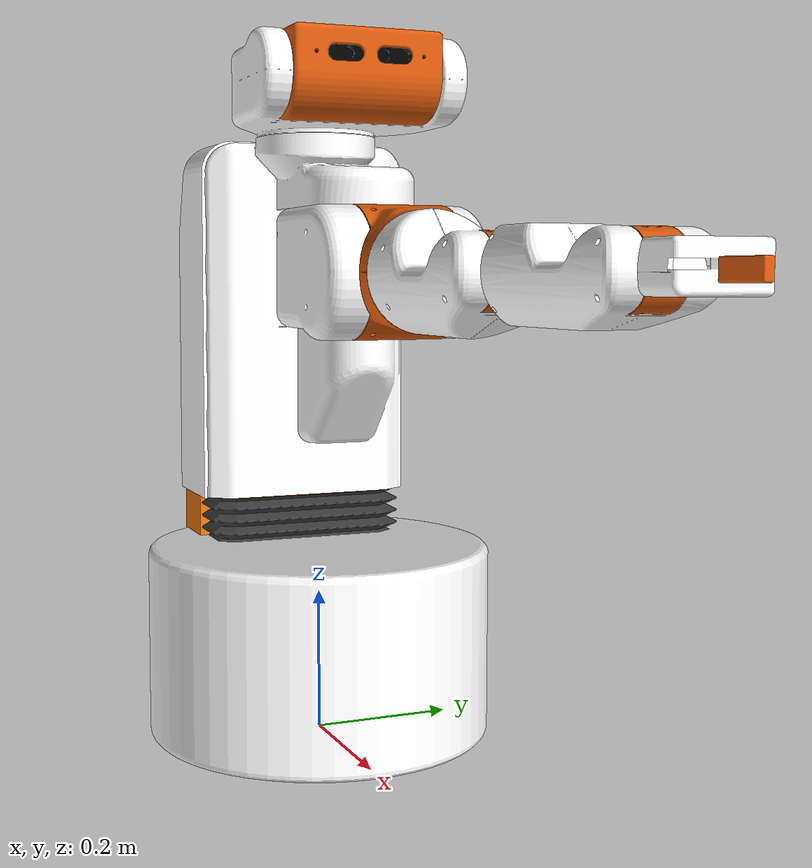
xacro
<?xml version="1.0"?>
<robot xmlns:xacro="http://www.ros.org/wiki/xacro" name="ubr1">
    <xacro:arg name="initial_positions_file" default="initial_positions.yaml" />

    <!-- Import ubr1 urdf file -->
    <xacro:include filename="$(find ubr1_description)/robots/ubr1_robot.urdf" />

    <!-- Import control_xacro -->
    <xacro:include filename="ubr1.ros2_control.xacro" />

    <xacro:ubr1_ros2_control name="FakeSystem" initial_positions_file="$(arg initial_positions_file)"/>

</robot>

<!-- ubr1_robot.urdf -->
<robot name="ubr1">
  <link name="base_link">
    <visual>
      <origin rpy="0 0 0" xyz="0 0 0" />
      <geometry>
        <mesh filename="package://ubr1_description/meshes/base_link.STL" />
      </geometry>
      <material name="">
        <color rgba="1 1 1 1" />
      </material>
    </visual>
    <collision>
      <origin rpy="0 0 0" xyz="-0.2475 -0.2475 0" />
      <geometry>
        <mesh filename="package://ubr1_description/meshes/base_link_col.STL" />
      </geometry>
    </collision>
  </link>
  <link name="base_inertia">
    <!-- Hack around KDL issues -->
    <inertial>
      <origin rpy="0 0 0" xyz="0.0043027 -0.0000947 0.1492788" />
      <mass value="35.0237183" />
      <inertia ixx="0.2749377" ixy="-0.0002025" ixz="-0.0013661"
               iyy="0.2398372" iyz="-0.0004900"
               izz="5.3671008"/>
    </inertial>
  </link>
  <joint name="base_inertia_joint" type="fixed">
    <origin rpy="0 0 0" xyz="0 0 0" />
    <parent link="base_link" />
    <child link="base_inertia" />
  </joint>
  <link name="torso_lift_link">
    <inertial>
      <origin rpy="0 0 0" xyz="-0.060142360276412 0.00304133533168627 0.343272867034157" />
      <mass value="10.81628746254819" />
      <inertia ixx="0.0641960264706125" ixy="0.001128617953499" ixz="0.00203364821006436" iyy="0.061658561971383" iyz="-3.14401755382909E-05" izz="0.0376084656328484" />
    </inertial>
    <visual>
      <origin rpy="0 0 0" xyz="0 0 0" />
      <geometry>
        <mesh filename="package://ubr1_description/meshes/torso_lift_link.STL" />
      </geometry>
      <material name="">
        <color rgba="1 1 1 1" />
      </material>
    </visual>
    <collision>
      <origin rpy="0 0 0" xyz="0 -.02 0" />
      <geometry>
        <mesh filename="package://ubr1_description/meshes/torso_lift_link_col.STL" />
      </geometry>
    </collision>
  </link>
  <joint name="torso_lift_joint" type="prismatic">
    <origin rpy="2.4652E-32 0 0" xyz="-0.051533 0 0.26428" />
    <parent link="base_link" />
    <child link="torso_lift_link" />
    <axis xyz="0 0 1" />
    <limit effort="450" lower="0.0" upper="0.3556" velocity="0.1" />
    <calibration rising="0.0" />
    <dynamics damping="1000" />
  </joint>
  <link name="shoulder_pan_link">
    <inertial>
      <inertia ixx="0.04593" ixy="-0.00259" ixz="-3e-05" iyy="0.03667" iyz="-0.00031" izz="0.04858" />
      <mass value="6.39321" />
      <origin rpy="0.0 0.0 0.0" xyz="0.01775 -0.00868 -0.00471" />
    </inertial>
    <visual>
      <origin rpy="0 0 0" xyz="0 0 0" />
      <geometry>
        <mesh filename="package://ubr1_description/meshes/shoulder_pan_link.STL" />
      </geometry>
      <material name="">
        <color rgba="1 1 1 1" />
      </material>
    </visual>
    <collision>
      <origin rpy="0 0 0" xyz="0.0 0 0" />
      <geometry>
        <mesh filename="package://ubr1_description/meshes/shoulder_pan_link_col.STL" />
      </geometry>
    </collision>
  </link>
  <joint name="shoulder_pan_joint" type="revolute">
    <origin rpy="-2.4652E-32 0 0" xyz="0.11446 0.035 0.39613" />
    <parent link="torso_lift_link" />
    <child link="shoulder_pan_link" />
    <axis xyz="0 0 1" />
    <limit effort="6.712" lower="-1.3962634" upper="1.3962634" velocity="1.30899694" />
    <calibration rising="0.0" />
    <dynamics damping="0.7" />
  </joint>
  <link name="shoulder_lift_link">
    <inertial>
      <inertia ixx="0.01193" ixy="0.00013" ixz="-0.00026" iyy="0.00932" iyz="4e-05" izz="0.01415" /><mass value="3.57781" /><origin rpy="0.0 0.0 0.0" xyz="0.01595 0.01107 -0.01047" /></inertial>
    <visual>
      <origin rpy="0 0 0" xyz="0 0 0" />
      <geometry>
        <mesh filename="package://ubr1_description/meshes/shoulder_lift_link.STL" />
      </geometry>
      <material name="">
        <color rgba="0.874509803921569 0.352941176470588 0.0470588235294118 1" />
      </material>
    </visual>
    <collision>
      <origin rpy="0 0 0" xyz="0.0 0 0" />
      <geometry>
        <mesh filename="package://ubr1_description/meshes/shoulder_lift_link_col.STL" />
      </geometry>
    </collision>
  </link>
  <joint name="shoulder_lift_joint" type="revolute">
    <origin rpy="0 0 0" xyz="0.11 0 0" />
    <parent link="shoulder_pan_link" />
    <child link="shoulder_lift_link" />
    <axis xyz="0 1 0" />
    <limit effort="37.802" lower="-0.785398163" upper="1.34390352" velocity="1.30899694" />
    <calibration rising="0.0" />
    <dynamics damping="0.7" />
  </joint>
  <link name="upperarm_roll_link">
    <inertial>
      <origin rpy="0.0 0.0 0.0" xyz="0.08552 -0.00001 -0.00997" />
      <inertia ixx="0.00618" ixy="-0.00015" ixz="0.00105" iyy="0.01931" iyz="0.0" izz="0.02107" />
      <mass value="2.59549" />
    </inertial>
    <visual>
      <origin rpy="0 0 0" xyz="0 0 0" />
      <geometry>
        <mesh filename="package://ubr1_description/meshes/upperarm_roll_link.STL" />
      </geometry>
      <material name="">
        <color rgba="1 1 1 1" />
      </material>
    </visual>
    <collision>
      <origin rpy="0 0 0" xyz="0 0 -0.08" />
      <geometry>
        <mesh filename="package://ubr1_description/meshes/upperarm_roll_link_col.STL" />
      </geometry>
    </collision>
  </link>
  <joint name="upperarm_roll_joint" type="revolute">
    <origin rpy="0 0 0" xyz="0.11545 0 0" />
    <parent link="shoulder_lift_link" />
    <child link="upperarm_roll_link" />
    <axis xyz="1 0 0" />
    <limit effort="12.97" lower="-3.92699082" upper="0.785398163" velocity="2.0943951" />
    <calibration rising="0.0" />
    <dynamics damping="0.7" />
  </joint>
  <link name="elbow_flex_link">
    <inertial>
      <inertia ixx="0.00134" ixy="1e-05" ixz="-1e-05" iyy="0.00135" iyz="0.0" izz="0.00214" />
      <mass value="1.18183" />
      <origin rpy="0.0 0.0 0.0" xyz="-0.01618 0.00090 0.00033" />
    </inertial>
    <visual>
      <origin rpy="0 0 0" xyz="0 0 0" />
      <geometry>
        <mesh filename="package://ubr1_description/meshes/elbow_flex_link.STL" />
      </geometry>
      <material name="">
        <color rgba="0.874509803921569 0.352941176470588 0.0470588235294118 1" />
      </material>
    </visual>
    <collision>
      <origin rpy="1.57 0 0" xyz="0.0 0 0" />
      <geometry>
        <cylinder length="0.05" radius="0.045"/>
      </geometry>
    </collision>
  </link>
  <joint name="elbow_flex_joint" type="revolute">
    <origin rpy="0 0 0" xyz="0.20955 0 0" />
    <parent link="upperarm_roll_link" />
    <child link="elbow_flex_link" />
    <axis xyz="0 1 0" />
    <limit effort="13.518" lower="-2.0943951" upper="0.0" velocity="1.30899694" />
    <calibration rising="0.0" />
    <dynamics damping="0.7" />
  </joint>
  <link name="forearm_roll_link">
    <inertial>
      <inertia ixx="0.00215" ixy="-3e-05" ixz="-0.00018" iyy="0.00589" iyz="0.0" izz="0.00659" />
      <mass value="1.61673" />
      <origin rpy="0.0 0.0 0.0" xyz="0.10890 -0.00049 -0.01352" />
    </inertial>
    <visual>
      <origin rpy="0 0 0" xyz="0 0 0" />
      <geometry>
        <mesh filename="package://ubr1_description/meshes/forearm_roll_link.STL" />
      </geometry>
      <material name="">
        <color rgba="1 1 1 1" />
      </material>
    </visual>
    <collision>
      <origin rpy="0 0 0" xyz="0 0 0" />
      <geometry>
        <mesh filename="package://ubr1_description/meshes/forearm_roll_link_col.STL" />
      </geometry>
    </collision>
  </link>
  <joint name="forearm_roll_joint" type="continuous">
    <origin rpy="0 0 0" xyz="0.0455000000000001 0 0" />
    <parent link="elbow_flex_link" />
    <child link="forearm_roll_link" />
    <axis xyz="1 0 0" />
    <limit effort="3.166" velocity="2.0943951" />
    <calibration rising="0.0" />
    <dynamics damping="0.7" />
  </joint>
  <link name="wrist_flex_link">
    <inertial>
      <inertia ixx="0.00028" ixy="0.0" ixz="0.0" iyy="0.00018" iyz="0.0" izz="0.00032" />
      <mass value="0.46911" />
      <origin rpy="0.0 0.0 0.0" xyz="0.00360 -0.00013 0.00004" />
    </inertial>
    <visual>
      <origin rpy="0 0 0" xyz="0 0 0" />
      <geometry>
        <mesh filename="package://ubr1_description/meshes/wrist_flex_link.STL" />
      </geometry>
      <material name="">
        <color rgba="0.874509803921569 0.352941176470588 0.0470588235294118 1" />
      </material>
    </visual>
    <collision>
      <origin rpy="1.57 0 0" xyz="0.0 0 0" />
      <geometry>
        <cylinder length="0.05" radius="0.04125"/>
      </geometry>
    </collision>
  </link>
  <joint name="wrist_flex_joint" type="revolute">
    <origin rpy="0 0 0" xyz="0.2345 0 0" />
    <parent link="forearm_roll_link" />
    <child link="wrist_flex_link" />
    <axis xyz="0 1 0" />
    <limit effort="4.543" lower="-2.26892803" upper="0.0" velocity="2.0943951" />
    <calibration rising="0.0" />
    <dynamics damping="0.7" />
  </joint>
  <link name="wrist_roll_link">
    <visual>
      <origin rpy="0 1.57 0" xyz="0 0 0" />
      <geometry>
        <cylinder length="0.05" radius="0.02"/>
      </geometry>
      <material name="">
        <color rgba="1 1 1 1" />
      </material>
    </visual>
    <collision>
      <origin rpy="0 1.57 0" xyz="0.0 0.0 0" />
      <geometry>
        <cylinder length="0.05" radius="0.02"/>
      </geometry>
    </collision>
  </link>
  <joint name="wrist_roll_joint" type="continuous">
    <origin rpy="0 0 0" xyz="0.0406 0 0" />
    <parent link="wrist_flex_link" />
    <child link="wrist_roll_link" />
    <axis xyz="1 0 0" />
    <limit effort="1.0" velocity="2.0943951" />
    <calibration rising="0.0" />
    <dynamics damping="0.7" />
  </joint>

  <link name="head_pan_link">
    <inertial>
      <origin rpy="0 0 0" xyz="0.03590 -0.02334 -0.00837" />
      <mass value="2.83708" />
      <inertia ixx="0.01624779629"  ixy="-0.00016395194"  ixz="0.00001236518"
               iyy="0.01221529906"  iyz="0.00044617693"
               izz="0.02259698742" />
    </inertial>
    <visual>
      <origin rpy="0 0 0" xyz="0 0 0" />
      <geometry>
        <mesh filename="package://ubr1_description/meshes/head_pan_link.STL" />
      </geometry>
      <material name="">
        <color rgba="1 1 1 1" />
      </material>
    </visual>
    <collision>
      <origin rpy="0 0 0" xyz="0.06 0 0.01" />
      <geometry>
        <box size="0.30 0.29 0.11"/>
      </geometry>
    </collision>
  </link>
  <joint name="head_pan_joint" type="revolute">
    <origin rpy="-2.46519032881566E-32 0 0" xyz="0.0388331045334431 0 0.643775" />
    <parent link="torso_lift_link" />
    <child link="head_pan_link" />
    <axis xyz="0 0 1" />
    <limit effort="8.55" lower="-1.57079633" upper="1.57079633" velocity="1.18682389" />
    <calibration rising="0.0" />
    <dynamics damping="0.7" />
  </joint>
  <link name="head_tilt_link">
    <inertial>
      <origin rpy="0 0 0" xyz="0.03670 -0.00247 0.04661" />
      <mass value="1.33203" />
      <inertia ixx="0.00792164189"  ixy="0.00056884845"   ixz="0.00186657783"
               iyy="0.00520291759"  iyz="0.00082595410"
               izz="0.00625497628" />
    </inertial>
    <visual>
      <origin rpy="0 0 0" xyz="0 0 0" />
      <geometry>
        <mesh filename="package://ubr1_description/meshes/head_tilt_link.STL" />
      </geometry>
      <material name="">
        <color rgba="0.874509803921569 0.352941176470588 0.0470588235294118 1" />
      </material>
    </visual>
    <collision>
      <origin rpy="0 0 0" xyz="0 0 0" />
      <geometry>
        <box size="0.10 0.29 0.10"/>
      </geometry>
    </collision>
  </link>
  <joint name="head_tilt_joint" type="revolute">
    <origin rpy="0 0 0" xyz="0.1524 0 0.0073" />
    <parent link="head_pan_link" />
    <child link="head_tilt_link" />
    <axis xyz="0 1 0" />
    <limit effort="7.6" lower="-0.785398163" upper="1.57079633" velocity="1.18682389" />
    <calibration rising="0.0" />
    <dynamics damping="0.7" />
  </joint>
  <link name="head_camera_link">
    <inertial>
      <origin rpy="0 0 0" xyz="0.00178948803750542 0.00293228933526682 -0.00126569018604761" />
      <mass value="0.15791194679459" />
      <inertia ixx="0.000410373133213838" ixy="-4.65746959126115E-06" ixz="1.54869804665117E-06"
               iyy="2.66787966300267E-05" iyz="-8.80223403267447E-06"
               izz="0.000415197483134736" />
    </inertial>
    <visual>
      <origin rpy="0 0 0" xyz="0 0 0" />
      <geometry>
        <mesh filename="package://ubr1_description/meshes/head_camera_link.STL" />
      </geometry>
      <material name="">
        <color rgba="0 0 0 1" />
      </material>
    </visual>
    <collision>
      <origin rpy="0 0 0" xyz="0.0 0.0 0" />
      <geometry>
        <box size="0.01 0.01 0.01"/>
      </geometry>
    </collision>
  </link>
  <joint name="head_camera_joint" type="fixed">
    <origin rpy="0 0 0" xyz="0.03475 0 0.022877" />
    <parent link="head_tilt_link" />
    <child link="head_camera_link" />
    <axis xyz="0 0 0" />
  </joint>

  <link name="head_camera_rgb_frame" />
  <joint name="head_camera_rgb_joint" type="fixed">
    <origin xyz="0.02 0.02 0" rpy="0 0 0"/>
    <parent link="head_camera_link" />
    <child link="head_camera_rgb_frame" />
  </joint>

  <link name="head_camera_rgb_optical_frame" />
  <joint name="head_camera_rgb_optical_joint" type="fixed">
    <origin xyz="0 0 0" rpy="-1.57079632679 0 -1.57079632679" />
    <parent link="head_camera_rgb_frame" />
    <child link="head_camera_rgb_optical_frame" />
  </joint>

  <link name="head_camera_depth_frame" />
  <joint name="head_camera_depth_joint" type="fixed">
    <origin xyz="0.02 0.045 0" rpy="0 0 0" />
    <parent link="head_camera_link" />
    <child link="head_camera_depth_frame" />
  </joint>

  <link name="head_camera_depth_optical_frame" />
  <joint name="head_camera_depth_optical_joint" type="fixed">
    <origin xyz="0 0 0" rpy="-1.57079632679 0 -1.57079632679" />
    <parent link="head_camera_depth_frame" />
    <child link="head_camera_depth_optical_frame" />
  </joint>

  <link name="estop_link">
    <inertial>
      <origin rpy="0 0 0" xyz="-6.39117272993595E-09 1.30867278759217E-05 0.0263084007038297" />
      <mass value="0.00196130439130725" />
      <inertia ixx="3.14705392512728E-07" ixy="-4.08544353458379E-12" ixz="2.20397665051664E-13"
               iyy="3.14452534479207E-07" iyz="-4.49188364721138E-10"
               izz="1.95488289214464E-07" />
    </inertial>
    <visual>
      <origin rpy="0 0 0" xyz="0 0 0" />
      <geometry>
        <mesh filename="package://ubr1_description/meshes/estop_link.STL" />
      </geometry>
      <material name="">
        <color rgba="1 0 0 1" />
      </material>
    </visual>
    <collision>
      <origin rpy="0 0 0" xyz="0.0 0.0 0" />
      <geometry>
        <box size="0.01 0.01 0.01"/>
      </geometry>
    </collision>
  </link>
  <joint name="estop_joint" type="fixed">
    <origin rpy="1.5708 -0.047415 -1.5708" xyz="-0.15995 0 0.4859" />
    <parent link="torso_lift_link" />
    <child link="estop_link" />
    <axis xyz="0 0 1" />
  </joint>
  <link name="bellows_link">
    <inertial>
      <origin rpy="0 0 0" xyz="-4.95346061296346E-08 0.123400904659858 0.0107781507059864" />
      <mass value="0.1" />
      <inertia ixx="0.000408561556131289" ixy="3.9348438720509E-09" ixz="2.76652370410412E-11"
               iyy="0.000721553598298091" iyz="3.35031527267575E-07"
               izz="0.00103695967363802" />
    </inertial>
    <visual>
      <origin rpy="0 0 0" xyz="0 0 0" />
      <geometry>
        <mesh filename="package://ubr1_description/meshes/bellows_link.STL" />
      </geometry>
      <material name="">
        <color rgba="0.250980392156863 0.250980392156863 0.250980392156863 1" />
      </material>
    </visual>
    <collision>
      <origin rpy="0 0 0" xyz="0.0 0.0 0" />
      <geometry>
        <box size="0.01 0.01 0.01"/>
      </geometry>
    </collision>
  </link>
  <joint name="bellows_joint" type="prismatic">
    <origin rpy="1.5708 -2.4652E-32 -1.5708" xyz="0.0047367 0 -0.1823" />
    <parent link="torso_lift_link" />
    <child link="bellows_link" />
    <axis xyz="0 1 0" />
    <limit effort="25.0" lower="-0.1778" upper="0.0" velocity="0.0" />
    <calibration rising="0.0" />
    <dynamics damping="0.7" />
  </joint>
  <link name="fixed_bellows_link">
    <inertial>
      <origin rpy="0 0 0" xyz="-4.95346056930955E-08 0.123400904659858 0.0107781507059864" />
      <mass value="0.0636200134411883" />
      <inertia ixx="0.000408561556131288" ixy="3.93484387266685E-09" ixz="2.76652374600841E-11"
               iyy="0.000721553598298089" iyz="3.35031527267454E-07"
               izz="0.00103695967363802" />
    </inertial>
    <visual>
      <origin rpy="0 0 0" xyz="0 0 0" />
      <geometry>
        <mesh filename="package://ubr1_description/meshes/bellows_link.STL" />
      </geometry>
      <material name="">
        <color rgba="0.250980392156863 0.250980392156863 0.250980392156863 1" />
      </material>
    </visual>
    <collision>
      <origin rpy="0 0 0" xyz="0.0 0.0 0" />
      <geometry>
        <box size="0.01 0.01 0.01"/>
      </geometry>
    </collision>
  </link>
  <joint name="fixed_bellows_joint" type="fixed">
    <origin rpy="1.5708 -2.4652E-32 -1.5708" xyz="0.0047367 0 -0.1823" />
    <parent link="torso_lift_link" />
    <child link="fixed_bellows_link" />
  </joint>
  <link name="fixed_torso_link">
    <inertial>
      <origin rpy="0 0 0" xyz="0.12118 0.55187 -0.00188" />
      <mass value="7.19400" />
      <inertia ixx="0.16941095831" ixy="-0.00114443001"   ixz="0.00090167218"
               iyy="0.15113888533" iyz="-0.00744737659"
               izz="0.04165307088" />
    </inertial>
    <visual>
      <origin rpy="0 0 0" xyz="0 0 0" />
      <geometry>
        <mesh filename="package://ubr1_description/meshes/fixed_torso_link.STL" />
      </geometry>
      <material name="">
        <color rgba="0.909803921568627 0.443137254901961 0.0313725490196078 1" />
      </material>
    </visual>
    <collision>
      <origin rpy="0 0 0" xyz="0.13 0.45 0" />
      <geometry>
        <box size="0.20 0.40 0.32"/>
      </geometry>
    </collision>
  </link>
  <joint name="fixed_torso_joint" type="fixed">
    <origin rpy="1.5708 0 3.1416" xyz="0 0 0" />
    <parent link="base_link" />
    <child link="fixed_torso_link" />
    <axis xyz="0 0 0" />
  </joint>
  <link name="right_wheel_link">
    <inertial>
      <origin rpy="0 0 0" xyz="-1.64014810163652E-10 0.00025233203864472 -2.77555756156289E-17" />
      <mass value="0.680549565836583" />
      <inertia ixx="0.000516152001969145" ixy="2.81654304441038E-14" ixz="-1.48432572797365E-22"
               iyy="0.000867209455065921" iyz="-1.17328198292256E-12"
               izz="0.000516152001737231" />
    </inertial>
    <visual>
      <origin rpy="0 0 0" xyz="0 0 0" />
      <geometry>
        <mesh filename="package://ubr1_description/meshes/right_wheel_link.STL" />
      </geometry>
      <material name="">
        <color rgba="0.909803921568627 0.443137254901961 0.0313725490196078 1" />
      </material>
    </visual>
    <collision>
      <origin rpy="1.57 0 0" xyz="0 0 0" />
      <geometry>
        <cylinder length="0.03" radius="0.06"/>
      </geometry>
    </collision>
  </link>
  <joint name="base_r_wheel_joint" type="continuous">
    <origin rpy="0 0 0" xyz="0 -0.17 0.05675" />
    <parent link="base_link" />
    <child link="right_wheel_link" />
    <axis xyz="0 1 0" />
    <limit effort="12.0" velocity="20.0" />
    <calibration rising="0.0" />
    <dynamics damping="0.5" />
  </joint>
  <link name="left_wheel_link">
    <inertial>
      <origin rpy="0 0 0" xyz="-1.64014810154732E-10 0.000252332038644693 -2.77555756156289E-17" />
      <mass value="0.680549565836583" />
      <inertia ixx="0.000516152001969145" ixy="2.81654302730693E-14" ixz="-1.39880007920223E-22"
               iyy="0.000867209455065921" iyz="-1.17328198291752E-12"
               izz="0.000516152001737231" />
    </inertial>
    <visual>
      <origin rpy="0 0 0" xyz="0 0 0" />
      <geometry>
        <mesh filename="package://ubr1_description/meshes/left_wheel_link.STL" />
      </geometry>
      <material name="">
        <color rgba="0.909803921568627 0.443137254901961 0.0313725490196078 1" />
      </material>
    </visual>
    <collision>
      <origin rpy="1.57 0 0" xyz="0 0 0" />
      <geometry>
        <cylinder length="0.03" radius="0.06"/>
      </geometry>
    </collision>
  </link>
  <joint name="base_l_wheel_joint" type="continuous">
    <origin rpy="0 0 0" xyz="0 0.17 0.05675" />
    <parent link="base_link" />
    <child link="left_wheel_link" />
    <axis xyz="0 1 0" />
    <limit effort="12.0" velocity="20.0" />
    <calibration rising="0.0" />
    <dynamics damping="0.5" />
  </joint>
  <link name="base_laser_link">
    <inertial>
      <origin rpy="0 0 0" xyz="-2.77555756156289E-17 2.24932874362996E-18 0.0202675371573463" />
      <mass value="0.13945214558184" />
      <inertia ixx="7.38616097495533E-05" ixy="3.43625778332246E-08" ixz="1.18982532649698E-21"
               iyy="7.38616097495533E-05" iyz="2.6318307602024E-21"
               izz="5.02435312332874E-05" />
    </inertial>
    <visual>
      <origin rpy="-3.14159265359 0 0" xyz="0 0 0" />
      <geometry>
        <mesh filename="package://ubr1_description/meshes/base_laser_link.STL" />
      </geometry>
      <material name="">
        <color rgba="0 0 0 1" />
      </material>
    </visual>
    <collision>
      <origin rpy="0 0 0" xyz="0.0 0.0 0" />
      <geometry>
        <box size="0.01 0.01 0.01"/>
      </geometry>
    </collision>
  </link>
  <joint name="base_laser_joint" type="fixed">
    <origin rpy="3.14159265359 0 -2.2204E-16" xyz="0.18683 0 0.21048" />
    <parent link="base_link" />
    <child link="base_laser_link" />
    <axis xyz="0 0 0" />
  </joint>

  <!-- default gripper -->
  <link name="gripper_link">
    <inertial>
      <inertia ixx="0.00039" ixy="0.0" ixz="0.0" iyy="0.00039" iyz="-1e-05" izz="0.00066" />
      <mass value="0.4218" />
      <origin rpy="0.0 0.0 0.0" xyz="0.04724 0.00159 0.00064" />
    </inertial>
    <visual>
      <origin rpy="0 0 0" xyz="0 0 0" />
      <geometry>
        <mesh filename="package://ubr1_description/meshes/gripper_link.STL" />
      </geometry>
      <material name="">
        <color rgba="1 1 1 1" />
      </material>
    </visual>
    <collision>
      <origin rpy="0 0 0" xyz="0 0 0" />
      <geometry>
        <mesh filename="package://ubr1_description/meshes/gripper_link_col.STL" />
      </geometry>
    </collision>
  </link>
  <joint name="gripper_joint" type="fixed">
    <origin rpy="0 0 0" xyz="0 0 0" />
    <parent link="wrist_roll_link" />
    <child link="gripper_link" />
    <axis xyz="0 0 0" />
  </joint>
  <link name="right_gripper_finger_link">
    <inertial>
      <origin rpy="0 0 0" xyz="0.00180634193065077 -0.00507960988304032 1.82718525310044E-07" />
      <mass value="0.00805661879107867" />
      <!-- Inertial matrix ixx/iyy/izz increased to make gazebo happy -->
      <inertia ixx="5.11986641952728E-03" ixy="3.30246887636314E-09" ixz="-1.19155944238838E-12"
               iyy="2.94192790473005E-03" iyz="7.56098476735154E-12"
               izz="2.63439556818182E-03" />
    </inertial>
    <visual>
      <origin rpy="0 0 0" xyz="0 0 0" />
      <geometry>
        <mesh filename="package://ubr1_description/meshes/right_gripper_finger_link.STL" />
      </geometry>
      <material name="">
        <color rgba="0.874509803921569 0.352941176470588 0.0470588235294118 1" />
      </material>
    </visual>
    <collision>
      <origin rpy="0 0 0" xyz="0 -0.005 0" />
      <geometry>
        <box size="0.06 0.01 0.022" />
      </geometry>
    </collision>
  </link>
  <joint name="right_gripper_joint" type="prismatic">
    <origin rpy="0 0 0" xyz="0.111 0 0" />
    <parent link="gripper_link" />
    <child link="right_gripper_finger_link" />
    <axis xyz="0 -1 0" />
    <limit effort="28.0" lower="0.0" upper="0.046" velocity="0.1" />
    <calibration rising="0.0" />
    <dynamics damping="2500" />
  </joint>
  <link name="left_gripper_finger_link">
    <inertial>
      <origin rpy="0 0 0" xyz="0.00180634285159509 0.00507961002244872 -1.82994932651503E-07" />
      <mass value="0.00805661848049576" />
      <!-- Inertial matrix ixx/iyy/izz increased to make gazebo happy -->
      <inertia ixx="5.11986620594033E-03" ixy="-3.30249741353407E-09" ixz="1.24817528594142E-12"
               iyy="2.94192770039741E-03" iyz="7.56956725380165E-12"
               izz="2.63439537656996E-03" />
    </inertial>
    <visual>
      <origin rpy="0 0 0" xyz="0 0 0" />
      <geometry>
        <mesh filename="package://ubr1_description/meshes/left_gripper_finger_link.STL" />
      </geometry>
      <material name="">
        <color rgba="0.874509803921569 0.352941176470588 0.0470588235294118 1" />
      </material>
    </visual>
    <collision>
      <origin rpy="0 0 0" xyz="0 0.005 0" />
      <geometry>
        <box size="0.06 0.01 0.022" />
      </geometry>
    </collision>
  </link>
  <joint name="left_gripper_joint" type="prismatic">
    <origin rpy="0 0 0" xyz="0.111 0 0" />
    <parent link="gripper_link" />
    <child link="left_gripper_finger_link" />
    <axis xyz="0 1 0" />
    <limit effort="28.0" lower="0.0" upper="0.045" velocity="0.1" />
    <calibration rising="0.0" />
    <dynamics damping="2500" />
  </joint>

</robot>
